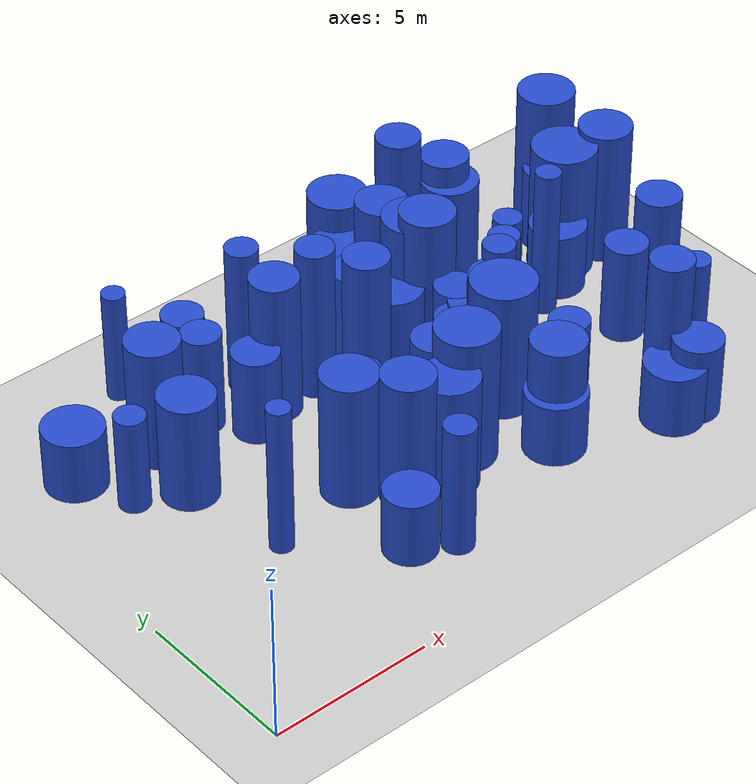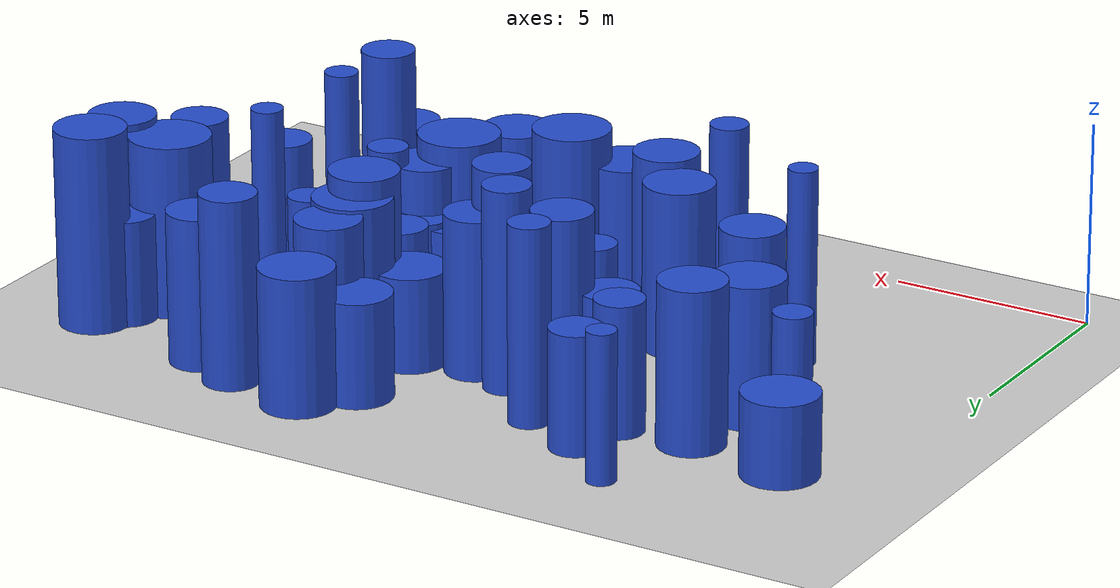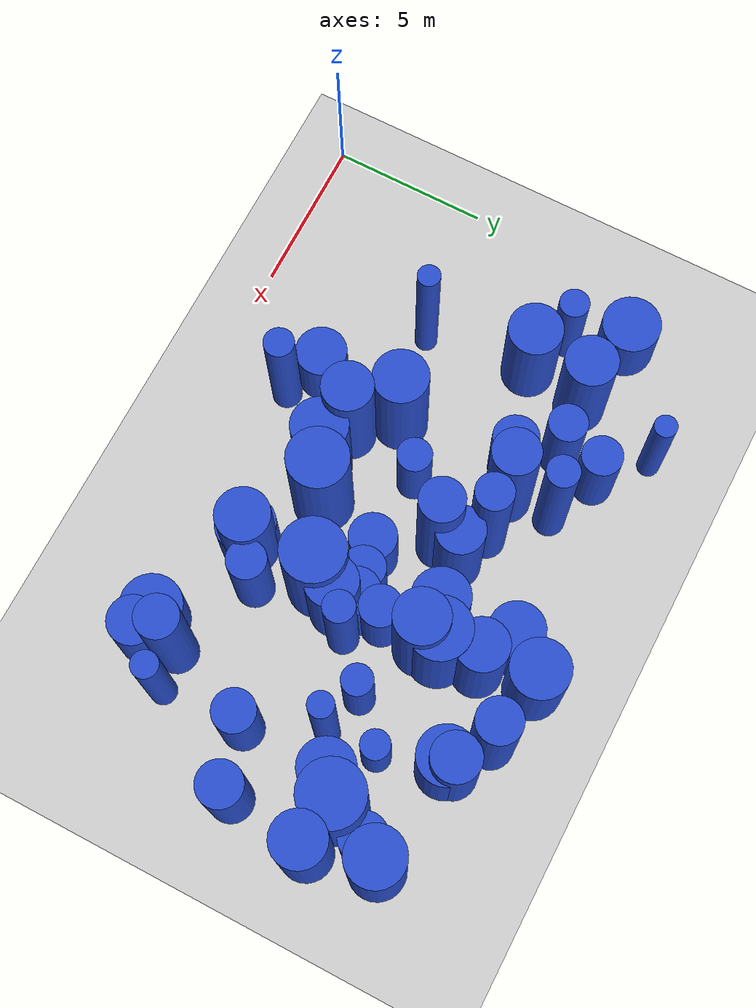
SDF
<sdf version="1.6">
 <world name="default">
  <model name="ground_plane">
   <static>1</static>
   <link name="link">
    <collision name="collision">
     <geometry><plane><normal>0 0 1</normal><size>100 100</size></plane></geometry>
     <surface><friction><ode><mu>100</mu><mu2>50</mu2></ode></friction></surface>
    </collision>
    <visual name="visual">
     <cast_shadows>0</cast_shadows>
     <geometry><plane><normal>0 0 1</normal><size>100 100</size></plane></geometry>
     <material>
      <script><uri>file://media/materials/scripts/gazebo.material</uri><name>Gazebo/Grey</name></script>
     </material>
    </visual>
   </link>
  </model>
  <model name="0">
   <static>0</static>
   <link name="link">
    <inertial>
     <mass>2</mass>
     <inertia><ixx>3.17312</ixx><ixy>0</ixy><ixz>0</ixz><iyy>3.17312</iyy><iyz>0</iyz><izz>0.73489</izz></inertia>
    </inertial>
    <collision name="collision">
     <geometry><cylinder><length>4.10293</length><radius>0.857257</radius></cylinder></geometry>
     <surface><contact><collide_without_contact>1</collide_without_contact></contact></surface>
    </collision>
    <visual name="visual">
     <geometry><cylinder><length>4.10293</length><radius>0.857257</radius></cylinder></geometry>
     <material>
      <script><uri>file://media/materials/scripts/gazebo.material</uri><name>Gazebo/Blue</name></script>
     </material>
    </visual>
    <gravity>0</gravity>
   </link>
   <pose>7.58804 6.08459 2.05146 0 -0 0</pose>
  </model>
  <model name="19">
   <static>0</static>
   <link name="link">
    <inertial>
     <mass>2</mass>
     <inertia><ixx>1.91883</ixx><ixy>0</ixy><ixz>0</ixz><iyy>1.91883</iyy><iyz>0</iyz><izz>0.790618</izz></inertia>
    </inertial>
    <collision name="collision">
     <geometry><cylinder><length>3.02343</length><radius>0.889167</radius></cylinder></geometry>
     <surface><contact><collide_without_contact>1</collide_without_contact></contact></surface>
    </collision>
    <visual name="visual">
     <geometry><cylinder><length>3.02343</length><radius>0.889167</radius></cylinder></geometry>
     <material>
      <script><uri>file://media/materials/scripts/gazebo.material</uri><name>Gazebo/Blue</name></script>
     </material>
    </visual>
    <gravity>0</gravity>
   </link>
   <pose>16.6325 12.2097 1.51172 0 -0 0</pose>
  </model>
  <model name="32">
   <static>0</static>
   <link name="link">
    <inertial>
     <mass>2</mass>
     <inertia><ixx>3.9654</ixx><ixy>0</ixy><ixz>0</ixz><iyy>3.9654</iyy><iyz>0</iyz><izz>0.125912</izz></inertia>
    </inertial>
    <collision name="collision">
     <geometry><cylinder><length>4.83887</length><radius>0.354841</radius></cylinder></geometry>
     <surface><contact><collide_without_contact>1</collide_without_contact></contact></surface>
    </collision>
    <visual name="visual">
     <geometry><cylinder><length>4.83887</length><radius>0.354841</radius></cylinder></geometry>
     <material>
      <script><uri>file://media/materials/scripts/gazebo.material</uri><name>Gazebo/Blue</name></script>
     </material>
    </visual>
    <gravity>0</gravity>
   </link>
   <pose>4.66651 5.49479 2.41944 0 -0 0</pose>
  </model>
  <model name="51">
   <static>0</static>
   <link name="link">
    <inertial>
     <mass>2</mass>
     <inertia><ixx>4.04703</ixx><ixy>0</ixy><ixz>0</ixz><iyy>4.04703</iyy><iyz>0</iyz><izz>0.151938</izz></inertia>
    </inertial>
    <collision name="collision">
     <geometry><cylinder><length>4.88122</length><radius>0.389792</radius></cylinder></geometry>
     <surface><contact><collide_without_contact>1</collide_without_contact></contact></surface>
    </collision>
    <visual name="visual">
     <geometry><cylinder><length>4.88122</length><radius>0.389792</radius></cylinder></geometry>
     <material>
      <script><uri>file://media/materials/scripts/gazebo.material</uri><name>Gazebo/Blue</name></script>
     </material>
    </visual>
    <gravity>0</gravity>
   </link>
   <pose>17.2535 8.66033 2.44061 0 -0 0</pose>
  </model>
  <model name="65">
   <static>0</static>
   <link name="link">
    <inertial>
     <mass>2</mass>
     <inertia><ixx>2.68412</ixx><ixy>0</ixy><ixz>0</ixz><iyy>2.68412</iyy><iyz>0</iyz><izz>0.778534</izz></inertia>
    </inertial>
    <collision name="collision">
     <geometry><cylinder><length>3.71067</length><radius>0.882346</radius></cylinder></geometry>
     <surface><contact><collide_without_contact>1</collide_without_contact></contact></surface>
    </collision>
    <visual name="visual">
     <geometry><cylinder><length>3.71067</length><radius>0.882346</radius></cylinder></geometry>
     <material>
      <script><uri>file://media/materials/scripts/gazebo.material</uri><name>Gazebo/Blue</name></script>
     </material>
    </visual>
    <gravity>0</gravity>
   </link>
   <pose>9.89569 4.60056 1.85534 0 -0 0</pose>
  </model>
  <model name="68">
   <static>0</static>
   <link name="link">
    <inertial>
     <mass>2</mass>
     <inertia><ixx>1.89087</ixx><ixy>0</ixy><ixz>0</ixz><iyy>1.89087</iyy><iyz>0</iyz><izz>0.429731</izz></inertia>
    </inertial>
    <collision name="collision">
     <geometry><cylinder><length>3.17112</length><radius>0.655539</radius></cylinder></geometry>
     <surface><contact><collide_without_contact>1</collide_without_contact></contact></surface>
    </collision>
    <visual name="visual">
     <geometry><cylinder><length>3.17112</length><radius>0.655539</radius></cylinder></geometry>
     <material>
      <script><uri>file://media/materials/scripts/gazebo.material</uri><name>Gazebo/Blue</name></script>
     </material>
    </visual>
    <gravity>0</gravity>
   </link>
   <pose>18.2845 6.37617 1.58556 0 -0 0</pose>
  </model>
  <model name="70">
   <static>0</static>
   <link name="link">
    <inertial>
     <mass>2</mass>
     <inertia><ixx>3.78775</ixx><ixy>0</ixy><ixz>0</ixz><iyy>3.78775</iyy><iyz>0</iyz><izz>0.890965</izz></inertia>
    </inertial>
    <collision name="collision">
     <geometry><cylinder><length>4.47813</length><radius>0.943909</radius></cylinder></geometry>
     <surface><contact><collide_without_contact>1</collide_without_contact></contact></surface>
    </collision>
    <visual name="visual">
     <geometry><cylinder><length>4.47813</length><radius>0.943909</radius></cylinder></geometry>
     <material>
      <script><uri>file://media/materials/scripts/gazebo.material</uri><name>Gazebo/Blue</name></script>
     </material>
    </visual>
    <gravity>0</gravity>
   </link>
   <pose>11.0126 5.18411 2.23906 0 -0 0</pose>
  </model>
  <model name="96">
   <static>0</static>
   <link name="link">
    <inertial>
     <mass>2</mass>
     <inertia><ixx>3.12972</ixx><ixy>0</ixy><ixz>0</ixz><iyy>3.12972</iyy><iyz>0</iyz><izz>0.918622</izz></inertia>
    </inertial>
    <collision name="collision">
     <geometry><cylinder><length>4.00281</length><radius>0.958448</radius></cylinder></geometry>
     <surface><contact><collide_without_contact>1</collide_without_contact></contact></surface>
    </collision>
    <visual name="visual">
     <geometry><cylinder><length>4.00281</length><radius>0.958448</radius></cylinder></geometry>
     <material>
      <script><uri>file://media/materials/scripts/gazebo.material</uri><name>Gazebo/Blue</name></script>
     </material>
    </visual>
    <gravity>0</gravity>
   </link>
   <pose>13.7137 10.487 2.0014 0 -0 0</pose>
  </model>
  <model name="98">
   <static>0</static>
   <link name="link">
    <inertial>
     <mass>2</mass>
     <inertia><ixx>3.96173</ixx><ixy>0</ixy><ixz>0</ixz><iyy>3.96173</iyy><iyz>0</iyz><izz>0.434607</izz></inertia>
    </inertial>
    <collision name="collision">
     <geometry><cylinder><length>4.73989</length><radius>0.659247</radius></cylinder></geometry>
     <surface><contact><collide_without_contact>1</collide_without_contact></contact></surface>
    </collision>
    <visual name="visual">
     <geometry><cylinder><length>4.73989</length><radius>0.659247</radius></cylinder></geometry>
     <material>
      <script><uri>file://media/materials/scripts/gazebo.material</uri><name>Gazebo/Blue</name></script>
     </material>
    </visual>
    <gravity>0</gravity>
   </link>
   <pose>17.1698 3.49956 2.36994 0 -0 0</pose>
  </model>
  <model name="100">
   <static>0</static>
   <link name="link">
    <inertial>
     <mass>2</mass>
     <inertia><ixx>3.05003</ixx><ixy>0</ixy><ixz>0</ixz><iyy>3.05003</iyy><iyz>0</iyz><izz>0.222899</izz></inertia>
    </inertial>
    <collision name="collision">
     <geometry><cylinder><length>4.19899</length><radius>0.472122</radius></cylinder></geometry>
     <surface><contact><collide_without_contact>1</collide_without_contact></contact></surface>
    </collision>
    <visual name="visual">
     <geometry><cylinder><length>4.19899</length><radius>0.472122</radius></cylinder></geometry>
     <material>
      <script><uri>file://media/materials/scripts/gazebo.material</uri><name>Gazebo/Blue</name></script>
     </material>
    </visual>
    <gravity>0</gravity>
   </link>
   <pose>8.32558 2.43405 2.09949 0 -0 0</pose>
  </model>
  <model name="102">
   <static>0</static>
   <link name="link">
    <inertial>
     <mass>2</mass>
     <inertia><ixx>3.49696</ixx><ixy>0</ixy><ixz>0</ixz><iyy>3.49696</iyy><iyz>0</iyz><izz>0.981406</izz></inertia>
    </inertial>
    <collision name="collision">
     <geometry><cylinder><length>4.24706</length><radius>0.99066</radius></cylinder></geometry>
     <surface><contact><collide_without_contact>1</collide_without_contact></contact></surface>
    </collision>
    <visual name="visual">
     <geometry><cylinder><length>4.24706</length><radius>0.99066</radius></cylinder></geometry>
     <material>
      <script><uri>file://media/materials/scripts/gazebo.material</uri><name>Gazebo/Blue</name></script>
     </material>
    </visual>
    <gravity>0</gravity>
   </link>
   <pose>13.4145 6.31929 2.12353 0 -0 0</pose>
  </model>
  <model name="128">
   <static>0</static>
   <link name="link">
    <inertial>
     <mass>2</mass>
     <inertia><ixx>2.24245</ixx><ixy>0</ixy><ixz>0</ixz><iyy>2.24245</iyy><iyz>0</iyz><izz>0.12581</izz></inertia>
    </inertial>
    <collision name="collision">
     <geometry><cylinder><length>3.61625</length><radius>0.354698</radius></cylinder></geometry>
     <surface><contact><collide_without_contact>1</collide_without_contact></contact></surface>
    </collision>
    <visual name="visual">
     <geometry><cylinder><length>3.61625</length><radius>0.354698</radius></cylinder></geometry>
     <material>
      <script><uri>file://media/materials/scripts/gazebo.material</uri><name>Gazebo/Blue</name></script>
     </material>
    </visual>
    <gravity>0</gravity>
   </link>
   <pose>5.24774 13.5813 1.80813 0 -0 0</pose>
  </model>
  <model name="134">
   <static>0</static>
   <link name="link">
    <inertial>
     <mass>2</mass>
     <inertia>
      <ixx>2.76564</ixx>
      <ixy>0</ixy>
      <ixz>0</ixz>
      <iyy>2.76564</iyy>
      <iyz>0</iyz>
      <izz>0.0823417</izz>
     </inertia>
    </inertial>
    <collision name="collision">
     <geometry><cylinder><length>4.04312</length><radius>0.286952</radius></cylinder></geometry>
     <surface><contact><collide_without_contact>1</collide_without_contact></contact></surface>
    </collision>
    <visual name="visual">
     <geometry><cylinder><length>4.04312</length><radius>0.286952</radius></cylinder></geometry>
     <material>
      <script><uri>file://media/materials/scripts/gazebo.material</uri><name>Gazebo/Blue</name></script>
     </material>
    </visual>
    <gravity>0</gravity>
   </link>
   <pose>8.13673 11.5728 2.02156 0 -0 0</pose>
  </model>
  <model name="142">
   <static>0</static>
   <link name="link">
    <inertial>
     <mass>2</mass>
     <inertia><ixx>1.31696</ixx><ixy>0</ixy><ixz>0</ixz><iyy>1.31696</iyy><iyz>0</iyz><izz>0.811578</izz></inertia>
    </inertial>
    <collision name="collision">
     <geometry><cylinder><length>2.33816</length><radius>0.900876</radius></cylinder></geometry>
     <surface><contact><collide_without_contact>1</collide_without_contact></contact></surface>
    </collision>
    <visual name="visual">
     <geometry><cylinder><length>2.33816</length><radius>0.900876</radius></cylinder></geometry>
     <material>
      <script><uri>file://media/materials/scripts/gazebo.material</uri><name>Gazebo/Blue</name></script>
     </material>
    </visual>
    <gravity>0</gravity>
   </link>
   <pose>12.5077 9.96442 1.16908 0 -0 0</pose>
  </model>
  <model name="150">
   <static>0</static>
   <link name="link">
    <inertial>
     <mass>2</mass>
     <inertia><ixx>1.70241</ixx><ixy>0</ixy><ixz>0</ixz><iyy>1.70241</iyy><iyz>0</iyz><izz>0.231826</izz></inertia>
    </inertial>
    <collision name="collision">
     <geometry><cylinder><length>3.08528</length><radius>0.481483</radius></cylinder></geometry>
     <surface><contact><collide_without_contact>1</collide_without_contact></contact></surface>
    </collision>
    <visual name="visual">
     <geometry><cylinder><length>3.08528</length><radius>0.481483</radius></cylinder></geometry>
     <material>
      <script><uri>file://media/materials/scripts/gazebo.material</uri><name>Gazebo/Blue</name></script>
     </material>
    </visual>
    <gravity>0</gravity>
   </link>
   <pose>15.9163 9.0167 1.54264 0 -0 0</pose>
  </model>
  <model name="173">
   <static>0</static>
   <link name="link">
    <inertial>
     <mass>2</mass>
     <inertia><ixx>3.54667</ixx><ixy>0</ixy><ixz>0</ixz><iyy>3.54667</iyy><iyz>0</iyz><izz>0.99816</izz></inertia>
    </inertial>
    <collision name="collision">
     <geometry><cylinder><length>4.27616</length><radius>0.99908</radius></cylinder></geometry>
     <surface><contact><collide_without_contact>1</collide_without_contact></contact></surface>
    </collision>
    <visual name="visual">
     <geometry><cylinder><length>4.27616</length><radius>0.99908</radius></cylinder></geometry>
     <material>
      <script><uri>file://media/materials/scripts/gazebo.material</uri><name>Gazebo/Blue</name></script>
     </material>
    </visual>
    <gravity>0</gravity>
   </link>
   <pose>19.1438 9.96415 2.13808 0 -0 0</pose>
  </model>
  <model name="176">
   <static>0</static>
   <link name="link">
    <inertial>
     <mass>2</mass>
     <inertia><ixx>2.66861</ixx><ixy>0</ixy><ixz>0</ixz><iyy>2.66861</iyy><iyz>0</iyz><izz>0.656205</izz></inertia>
    </inertial>
    <collision name="collision">
     <geometry><cylinder><length>3.7474</length><radius>0.810065</radius></cylinder></geometry>
     <surface><contact><collide_without_contact>1</collide_without_contact></contact></surface>
    </collision>
    <visual name="visual">
     <geometry><cylinder><length>3.7474</length><radius>0.810065</radius></cylinder></geometry>
     <material>
      <script><uri>file://media/materials/scripts/gazebo.material</uri><name>Gazebo/Blue</name></script>
     </material>
    </visual>
    <gravity>0</gravity>
   </link>
   <pose>13.8585 7.12105 1.8737 0 -0 0</pose>
  </model>
  <model name="177">
   <static>0</static>
   <link name="link">
    <inertial>
     <mass>2</mass>
     <inertia><ixx>2.61872</ixx><ixy>0</ixy><ixz>0</ixz><iyy>2.61872</iyy><iyz>0</iyz><izz>0.558174</izz></inertia>
    </inertial>
    <collision name="collision">
     <geometry><cylinder><length>3.74671</length><radius>0.74711</radius></cylinder></geometry>
     <surface><contact><collide_without_contact>1</collide_without_contact></contact></surface>
    </collision>
    <visual name="visual">
     <geometry><cylinder><length>3.74671</length><radius>0.74711</radius></cylinder></geometry>
     <material>
      <script><uri>file://media/materials/scripts/gazebo.material</uri><name>Gazebo/Blue</name></script>
     </material>
    </visual>
    <gravity>0</gravity>
   </link>
   <pose>16.657 12.4871 1.87335 0 -0 0</pose>
  </model>
  <model name="178">
   <static>0</static>
   <link name="link">
    <inertial>
     <mass>2</mass>
     <inertia><ixx>4.35734</ixx><ixy>0</ixy><ixz>0</ixz><iyy>4.35734</iyy><iyz>0</iyz><izz>0.762435</izz></inertia>
    </inertial>
    <collision name="collision">
     <geometry><cylinder><length>4.88434</length><radius>0.873175</radius></cylinder></geometry>
     <surface><contact><collide_without_contact>1</collide_without_contact></contact></surface>
    </collision>
    <visual name="visual">
     <geometry><cylinder><length>4.88434</length><radius>0.873175</radius></cylinder></geometry>
     <material>
      <script><uri>file://media/materials/scripts/gazebo.material</uri><name>Gazebo/Blue</name></script>
     </material>
    </visual>
    <gravity>0</gravity>
   </link>
   <pose>20.1013 11.808 2.44217 0 -0 0</pose>
  </model>
  <model name="179">
   <static>0</static>
   <link name="link">
    <inertial>
     <mass>2</mass>
     <inertia><ixx>1.08249</ixx><ixy>0</ixy><ixz>0</ixz><iyy>1.08249</iyy><iyz>0</iyz><izz>0.205577</izz></inertia>
    </inertial>
    <collision name="collision">
     <geometry><cylinder><length>2.4245</length><radius>0.453406</radius></cylinder></geometry>
     <surface><contact><collide_without_contact>1</collide_without_contact></contact></surface>
    </collision>
    <visual name="visual">
     <geometry><cylinder><length>2.4245</length><radius>0.453406</radius></cylinder></geometry>
     <material>
      <script><uri>file://media/materials/scripts/gazebo.material</uri><name>Gazebo/Blue</name></script>
     </material>
    </visual>
    <gravity>0</gravity>
   </link>
   <pose>17.2031 10.256 1.21225 0 -0 0</pose>
  </model>
  <model name="216">
   <static>0</static>
   <link name="link">
    <inertial>
     <mass>2</mass>
     <inertia><ixx>1.55664</ixx><ixy>0</ixy><ixz>0</ixz><iyy>1.55664</iyy><iyz>0</iyz><izz>0.512471</izz></inertia>
    </inertial>
    <collision name="collision">
     <geometry><cylinder><length>2.79329</length><radius>0.715871</radius></cylinder></geometry>
     <surface><contact><collide_without_contact>1</collide_without_contact></contact></surface>
    </collision>
    <visual name="visual">
     <geometry><cylinder><length>2.79329</length><radius>0.715871</radius></cylinder></geometry>
     <material>
      <script><uri>file://media/materials/scripts/gazebo.material</uri><name>Gazebo/Blue</name></script>
     </material>
    </visual>
    <gravity>0</gravity>
   </link>
   <pose>7.27759 9.78099 1.39664 0 -0 0</pose>
  </model>
  <model name="228">
   <static>0</static>
   <link name="link">
    <inertial>
     <mass>2</mass>
     <inertia><ixx>2.36943</ixx><ixy>0</ixy><ixz>0</ixz><iyy>2.36943</iyy><iyz>0</iyz><izz>0.485258</izz></inertia>
    </inertial>
    <collision name="collision">
     <geometry><cylinder><length>3.57222</length><radius>0.696605</radius></cylinder></geometry>
     <surface><contact><collide_without_contact>1</collide_without_contact></contact></surface>
    </collision>
    <visual name="visual">
     <geometry><cylinder><length>3.57222</length><radius>0.696605</radius></cylinder></geometry>
     <material>
      <script><uri>file://media/materials/scripts/gazebo.material</uri><name>Gazebo/Blue</name></script>
     </material>
    </visual>
    <gravity>0</gravity>
   </link>
   <pose>20.259 7.07931 1.78611 0 -0 0</pose>
  </model>
  <model name="230">
   <static>0</static>
   <link name="link">
    <inertial>
     <mass>2</mass>
     <inertia><ixx>2.84759</ixx><ixy>0</ixy><ixz>0</ixz><iyy>2.84759</iyy><iyz>0</iyz><izz>0.555509</izz></inertia>
    </inertial>
    <collision name="collision">
     <geometry><cylinder><length>3.9267</length><radius>0.745325</radius></cylinder></geometry>
     <surface><contact><collide_without_contact>1</collide_without_contact></contact></surface>
    </collision>
    <visual name="visual">
     <geometry><cylinder><length>3.9267</length><radius>0.745325</radius></cylinder></geometry>
     <material>
      <script><uri>file://media/materials/scripts/gazebo.material</uri><name>Gazebo/Blue</name></script>
     </material>
    </visual>
    <gravity>0</gravity>
   </link>
   <pose>10.8914 9.71009 1.96335 0 -0 0</pose>
  </model>
  <model name="231">
   <static>0</static>
   <link name="link">
    <inertial>
     <mass>2</mass>
     <inertia><ixx>1.37799</ixx><ixy>0</ixy><ixz>0</ixz><iyy>1.37799</iyy><iyz>0</iyz><izz>0.576397</izz></inertia>
    </inertial>
    <collision name="collision">
     <geometry><cylinder><length>2.5571</length><radius>0.759208</radius></cylinder></geometry>
     <surface><contact><collide_without_contact>1</collide_without_contact></contact></surface>
    </collision>
    <visual name="visual">
     <geometry><cylinder><length>2.5571</length><radius>0.759208</radius></cylinder></geometry>
     <material>
      <script><uri>file://media/materials/scripts/gazebo.material</uri><name>Gazebo/Blue</name></script>
     </material>
    </visual>
    <gravity>0</gravity>
   </link>
   <pose>17.278 2.4037 1.27855 0 -0 0</pose>
  </model>
  <model name="237">
   <static>0</static>
   <link name="link">
    <inertial>
     <mass>2</mass>
     <inertia><ixx>1.73145</ixx><ixy>0</ixy><ixz>0</ixz><iyy>1.73145</iyy><iyz>0</iyz><izz>0.219115</izz></inertia>
    </inertial>
    <collision name="collision">
     <geometry><cylinder><length>3.11951</length><radius>0.468098</radius></cylinder></geometry>
     <surface><contact><collide_without_contact>1</collide_without_contact></contact></surface>
    </collision>
    <visual name="visual">
     <geometry><cylinder><length>3.11951</length><radius>0.468098</radius></cylinder></geometry>
     <material>
      <script><uri>file://media/materials/scripts/gazebo.material</uri><name>Gazebo/Blue</name></script>
     </material>
    </visual>
    <gravity>0</gravity>
   </link>
   <pose>2.70861 9.48537 1.55976 0 -0 0</pose>
  </model>
  <model name="238">
   <static>0</static>
   <link name="link">
    <inertial>
     <mass>2</mass>
     <inertia><ixx>4.05026</ixx><ixy>0</ixy><ixz>0</ixz><iyy>4.05026</iyy><iyz>0</iyz><izz>0.247757</izz></inertia>
    </inertial>
    <collision name="collision">
     <geometry><cylinder><length>4.85369</length><radius>0.497752</radius></cylinder></geometry>
     <surface><contact><collide_without_contact>1</collide_without_contact></contact></surface>
    </collision>
    <visual name="visual">
     <geometry><cylinder><length>4.85369</length><radius>0.497752</radius></cylinder></geometry>
     <material>
      <script><uri>file://media/materials/scripts/gazebo.material</uri><name>Gazebo/Blue</name></script>
     </material>
    </visual>
    <gravity>0</gravity>
   </link>
   <pose>8.29883 11.6 2.42685 0 -0 0</pose>
  </model>
  <model name="256">
   <static>0</static>
   <link name="link">
    <inertial>
     <mass>2</mass>
     <inertia><ixx>3.83415</ixx><ixy>0</ixy><ixz>0</ixz><iyy>3.83415</iyy><iyz>0</iyz><izz>0.471986</izz></inertia>
    </inertial>
    <collision name="collision">
     <geometry><cylinder><length>4.64639</length><radius>0.687012</radius></cylinder></geometry>
     <surface><contact><collide_without_contact>1</collide_without_contact></contact></surface>
    </collision>
    <visual name="visual">
     <geometry><cylinder><length>4.64639</length><radius>0.687012</radius></cylinder></geometry>
     <material>
      <script><uri>file://media/materials/scripts/gazebo.material</uri><name>Gazebo/Blue</name></script>
     </material>
    </visual>
    <gravity>0</gravity>
   </link>
   <pose>15.3863 13.1119 2.3232 0 -0 0</pose>
  </model>
  <model name="257">
   <static>0</static>
   <link name="link">
    <inertial>
     <mass>2</mass>
     <inertia><ixx>2.32191</ixx><ixy>0</ixy><ixz>0</ixz><iyy>2.32191</iyy><iyz>0</iyz><izz>0.816403</izz></inertia>
    </inertial>
    <collision name="collision">
     <geometry><cylinder><length>3.38854</length><radius>0.90355</radius></cylinder></geometry>
     <surface><contact><collide_without_contact>1</collide_without_contact></contact></surface>
    </collision>
    <visual name="visual">
     <geometry><cylinder><length>3.38854</length><radius>0.90355</radius></cylinder></geometry>
     <material>
      <script><uri>file://media/materials/scripts/gazebo.material</uri><name>Gazebo/Blue</name></script>
     </material>
    </visual>
    <gravity>0</gravity>
   </link>
   <pose>13.3203 13.4602 1.69427 0 -0 0</pose>
  </model>
  <model name="260">
   <static>0</static>
   <link name="link">
    <inertial>
     <mass>2</mass>
     <inertia><ixx>2.08267</ixx><ixy>0</ixy><ixz>0</ixz><iyy>2.08267</iyy><iyz>0</iyz><izz>0.369878</izz></inertia>
    </inertial>
    <collision name="collision">
     <geometry><cylinder><length>3.37437</length><radius>0.608176</radius></cylinder></geometry>
     <surface><contact><collide_without_contact>1</collide_without_contact></contact></surface>
    </collision>
    <visual name="visual">
     <geometry><cylinder><length>3.37437</length><radius>0.608176</radius></cylinder></geometry>
     <material>
      <script><uri>file://media/materials/scripts/gazebo.material</uri><name>Gazebo/Blue</name></script>
     </material>
    </visual>
    <gravity>0</gravity>
   </link>
   <pose>14.3535 4.61027 1.68718 0 -0 0</pose>
  </model>
  <model name="262">
   <static>0</static>
   <link name="link">
    <inertial>
     <mass>2</mass>
     <inertia><ixx>4.27903</ixx><ixy>0</ixy><ixz>0</ixz><iyy>4.27903</iyy><iyz>0</iyz><izz>0.477911</izz></inertia>
    </inertial>
    <collision name="collision">
     <geometry><cylinder><length>4.92346</length><radius>0.691311</radius></cylinder></geometry>
     <surface><contact><collide_without_contact>1</collide_without_contact></contact></surface>
    </collision>
    <visual name="visual">
     <geometry><cylinder><length>4.92346</length><radius>0.691311</radius></cylinder></geometry>
     <material>
      <script><uri>file://media/materials/scripts/gazebo.material</uri><name>Gazebo/Blue</name></script>
     </material>
    </visual>
    <gravity>0</gravity>
   </link>
   <pose>10.629 8.95673 2.46173 0 -0 0</pose>
  </model>
  <model name="290">
   <static>0</static>
   <link name="link">
    <inertial>
     <mass>2</mass>
     <inertia><ixx>2.55981</ixx><ixy>0</ixy><ixz>0</ixz><iyy>2.55981</iyy><iyz>0</iyz><izz>0.696159</izz></inertia>
    </inertial>
    <collision name="collision">
     <geometry><cylinder><length>3.64285</length><radius>0.834361</radius></cylinder></geometry>
     <surface><contact><collide_without_contact>1</collide_without_contact></contact></surface>
    </collision>
    <visual name="visual">
     <geometry><cylinder><length>3.64285</length><radius>0.834361</radius></cylinder></geometry>
     <material>
      <script><uri>file://media/materials/scripts/gazebo.material</uri><name>Gazebo/Blue</name></script>
     </material>
    </visual>
    <gravity>0</gravity>
   </link>
   <pose>13.2876 3.91817 1.82143 0 -0 0</pose>
  </model>
  <model name="293">
   <static>0</static>
   <link name="link">
    <inertial>
     <mass>2</mass>
     <inertia><ixx>1.41927</ixx><ixy>0</ixy><ixz>0</ixz><iyy>1.41927</iyy><iyz>0</iyz><izz>0.271073</izz></inertia>
    </inertial>
    <collision name="collision">
     <geometry><cylinder><length>2.77531</length><radius>0.520647</radius></cylinder></geometry>
     <surface><contact><collide_without_contact>1</collide_without_contact></contact></surface>
    </collision>
    <visual name="visual">
     <geometry><cylinder><length>2.77531</length><radius>0.520647</radius></cylinder></geometry>
     <material>
      <script><uri>file://media/materials/scripts/gazebo.material</uri><name>Gazebo/Blue</name></script>
     </material>
    </visual>
    <gravity>0</gravity>
   </link>
   <pose>13.4617 6.71615 1.38766 0 -0 0</pose>
  </model>
  <model name="326">
   <static>0</static>
   <link name="link">
    <inertial>
     <mass>2</mass>
     <inertia><ixx>3.63062</ixx><ixy>0</ixy><ixz>0</ixz><iyy>3.63062</iyy><iyz>0</iyz><izz>0.679566</izz></inertia>
    </inertial>
    <collision name="collision">
     <geometry><cylinder><length>4.44354</length><radius>0.824358</radius></cylinder></geometry>
     <surface><contact><collide_without_contact>1</collide_without_contact></contact></surface>
    </collision>
    <visual name="visual">
     <geometry><cylinder><length>4.44354</length><radius>0.824358</radius></cylinder></geometry>
     <material>
      <script><uri>file://media/materials/scripts/gazebo.material</uri><name>Gazebo/Blue</name></script>
     </material>
    </visual>
    <gravity>0</gravity>
   </link>
   <pose>20.6175 9.76985 2.22177 0 -0 0</pose>
  </model>
  <model name="334">
   <static>0</static>
   <link name="link">
    <inertial>
     <mass>2</mass>
     <inertia><ixx>2.88136</ixx><ixy>0</ixy><ixz>0</ixz><iyy>2.88136</iyy><iyz>0</iyz><izz>0.64246</izz></inertia>
    </inertial>
    <collision name="collision">
     <geometry><cylinder><length>3.91928</length><radius>0.801536</radius></cylinder></geometry>
     <surface><contact><collide_without_contact>1</collide_without_contact></contact></surface>
    </collision>
    <visual name="visual">
     <geometry><cylinder><length>3.91928</length><radius>0.801536</radius></cylinder></geometry>
     <material>
      <script><uri>file://media/materials/scripts/gazebo.material</uri><name>Gazebo/Blue</name></script>
     </material>
    </visual>
    <gravity>0</gravity>
   </link>
   <pose>13.5713 11.7381 1.95964 0 -0 0</pose>
  </model>
  <model name="350">
   <static>0</static>
   <link name="link">
    <inertial>
     <mass>2</mass>
     <inertia><ixx>2.36875</ixx><ixy>0</ixy><ixz>0</ixz><iyy>2.36875</iyy><iyz>0</iyz><izz>0.717908</izz></inertia>
    </inertial>
    <collision name="collision">
     <geometry><cylinder><length>3.47257</length><radius>0.847294</radius></cylinder></geometry>
     <surface><contact><collide_without_contact>1</collide_without_contact></contact></surface>
    </collision>
    <visual name="visual">
     <geometry><cylinder><length>3.47257</length><radius>0.847294</radius></cylinder></geometry>
     <material>
      <script><uri>file://media/materials/scripts/gazebo.material</uri><name>Gazebo/Blue</name></script>
     </material>
    </visual>
    <gravity>0</gravity>
   </link>
   <pose>4.15569 8.85593 1.73629 0 -0 0</pose>
  </model>
  <model name="351">
   <static>0</static>
   <link name="link">
    <inertial>
     <mass>2</mass>
     <inertia><ixx>3.67942</ixx><ixy>0</ixy><ixz>0</ixz><iyy>3.67942</iyy><iyz>0</iyz><izz>0.710113</izz></inertia>
    </inertial>
    <collision name="collision">
     <geometry><cylinder><length>4.46612</length><radius>0.842682</radius></cylinder></geometry>
     <surface><contact><collide_without_contact>1</collide_without_contact></contact></surface>
    </collision>
    <visual name="visual">
     <geometry><cylinder><length>4.46612</length><radius>0.842682</radius></cylinder></geometry>
     <material>
      <script><uri>file://media/materials/scripts/gazebo.material</uri><name>Gazebo/Blue</name></script>
     </material>
    </visual>
    <gravity>0</gravity>
   </link>
   <pose>13.747 9.92959 2.23306 0 -0 0</pose>
  </model>
  <model name="360">
   <static>0</static>
   <link name="link">
    <inertial>
     <mass>2</mass>
     <inertia><ixx>2.75827</ixx><ixy>0</ixy><ixz>0</ixz><iyy>2.75827</iyy><iyz>0</iyz><izz>0.173999</izz></inertia>
    </inertial>
    <collision name="collision">
     <geometry><cylinder><length>4.00345</length><radius>0.417132</radius></cylinder></geometry>
     <surface><contact><collide_without_contact>1</collide_without_contact></contact></surface>
    </collision>
    <visual name="visual">
     <geometry><cylinder><length>4.00345</length><radius>0.417132</radius></cylinder></geometry>
     <material>
      <script><uri>file://media/materials/scripts/gazebo.material</uri><name>Gazebo/Blue</name></script>
     </material>
    </visual>
    <gravity>0</gravity>
   </link>
   <pose>18.3902 3.71145 2.00173 0 -0 0</pose>
  </model>
  <model name="363">
   <static>0</static>
   <link name="link">
    <inertial>
     <mass>2</mass>
     <inertia><ixx>3.34913</ixx><ixy>0</ixy><ixz>0</ixz><iyy>3.34913</iyy><iyz>0</iyz><izz>0.634081</izz></inertia>
    </inertial>
    <collision name="collision">
     <geometry><cylinder><length>4.26527</length><radius>0.796292</radius></cylinder></geometry>
     <surface><contact><collide_without_contact>1</collide_without_contact></contact></surface>
    </collision>
    <visual name="visual">
     <geometry><cylinder><length>4.26527</length><radius>0.796292</radius></cylinder></geometry>
     <material>
      <script><uri>file://media/materials/scripts/gazebo.material</uri><name>Gazebo/Blue</name></script>
     </material>
    </visual>
    <gravity>0</gravity>
   </link>
   <pose>8.6309 4.87337 2.13264 0 -0 0</pose>
  </model>
  <model name="378">
   <static>0</static>
   <link name="link">
    <inertial>
     <mass>2</mass>
     <inertia><ixx>1.04169</ixx><ixy>0</ixy><ixz>0</ixz><iyy>1.04169</iyy><iyz>0</iyz><izz>0.640047</izz></inertia>
    </inertial>
    <collision name="collision">
     <geometry><cylinder><length>2.08086</length><radius>0.800029</radius></cylinder></geometry>
     <surface><contact><collide_without_contact>1</collide_without_contact></contact></surface>
    </collision>
    <visual name="visual">
     <geometry><cylinder><length>2.08086</length><radius>0.800029</radius></cylinder></geometry>
     <material>
      <script><uri>file://media/materials/scripts/gazebo.material</uri><name>Gazebo/Blue</name></script>
     </material>
    </visual>
    <gravity>0</gravity>
   </link>
   <pose>7.25961 3.17094 1.04043 0 -0 0</pose>
  </model>
  <model name="379">
   <static>0</static>
   <link name="link">
    <inertial>
     <mass>2</mass>
     <inertia><ixx>1.45944</ixx><ixy>0</ixy><ixz>0</ixz><iyy>1.45944</iyy><iyz>0</iyz><izz>0.723548</izz></inertia>
    </inertial>
    <collision name="collision">
     <geometry><cylinder><length>2.56632</length><radius>0.850616</radius></cylinder></geometry>
     <surface><contact><collide_without_contact>1</collide_without_contact></contact></surface>
    </collision>
    <visual name="visual">
     <geometry><cylinder><length>2.56632</length><radius>0.850616</radius></cylinder></geometry>
     <material>
      <script><uri>file://media/materials/scripts/gazebo.material</uri><name>Gazebo/Blue</name></script>
     </material>
    </visual>
    <gravity>0</gravity>
   </link>
   <pose>12.4265 12.3591 1.28316 0 -0 0</pose>
  </model>
  <model name="387">
   <static>0</static>
   <link name="link">
    <inertial>
     <mass>2</mass>
     <inertia><ixx>1.37068</ixx><ixy>0</ixy><ixz>0</ixz><iyy>1.37068</iyy><iyz>0</iyz><izz>0.291885</izz></inertia>
    </inertial>
    <collision name="collision">
     <geometry><cylinder><length>2.7108</length><radius>0.540264</radius></cylinder></geometry>
     <surface><contact><collide_without_contact>1</collide_without_contact></contact></surface>
    </collision>
    <visual name="visual">
     <geometry><cylinder><length>2.7108</length><radius>0.540264</radius></cylinder></geometry>
     <material>
      <script><uri>file://media/materials/scripts/gazebo.material</uri><name>Gazebo/Blue</name></script>
     </material>
    </visual>
    <gravity>0</gravity>
   </link>
   <pose>9.1169 7.34232 1.3554 0 -0 0</pose>
  </model>
  <model name="394">
   <static>0</static>
   <link name="link">
    <inertial>
     <mass>2</mass>
     <inertia><ixx>1.10922</ixx><ixy>0</ixy><ixz>0</ixz><iyy>1.10922</iyy><iyz>0</iyz><izz>0.864611</izz></inertia>
    </inertial>
    <collision name="collision">
     <geometry><cylinder><length>2.01532</length><radius>0.929844</radius></cylinder></geometry>
     <surface><contact><collide_without_contact>1</collide_without_contact></contact></surface>
    </collision>
    <visual name="visual">
     <geometry><cylinder><length>2.01532</length><radius>0.929844</radius></cylinder></geometry>
     <material>
      <script><uri>file://media/materials/scripts/gazebo.material</uri><name>Gazebo/Blue</name></script>
     </material>
    </visual>
    <gravity>0</gravity>
   </link>
   <pose>13.1339 3.76967 1.00766 0 -0 0</pose>
  </model>
  <model name="402">
   <static>0</static>
   <link name="link">
    <inertial>
     <mass>2</mass>
     <inertia><ixx>1.18263</ixx><ixy>0</ixy><ixz>0</ixz><iyy>1.18263</iyy><iyz>0</iyz><izz>0.77149</izz></inertia>
    </inertial>
    <collision name="collision">
     <geometry><cylinder><length>2.18662</length><radius>0.878345</radius></cylinder></geometry>
     <surface><contact><collide_without_contact>1</collide_without_contact></contact></surface>
    </collision>
    <visual name="visual">
     <geometry><cylinder><length>2.18662</length><radius>0.878345</radius></cylinder></geometry>
     <material>
      <script><uri>file://media/materials/scripts/gazebo.material</uri><name>Gazebo/Blue</name></script>
     </material>
    </visual>
    <gravity>0</gravity>
   </link>
   <pose>18.3615 9.30445 1.09331 0 -0 0</pose>
  </model>
  <model name="406">
   <static>0</static>
   <link name="link">
    <inertial>
     <mass>2</mass>
     <inertia><ixx>1.3793</ixx><ixy>0</ixy><ixz>0</ixz><iyy>1.3793</iyy><iyz>0</iyz><izz>0.423056</izz></inertia>
    </inertial>
    <collision name="collision">
     <geometry><cylinder><length>2.64701</length><radius>0.650427</radius></cylinder></geometry>
     <surface><contact><collide_without_contact>1</collide_without_contact></contact></surface>
    </collision>
    <visual name="visual">
     <geometry><cylinder><length>2.64701</length><radius>0.650427</radius></cylinder></geometry>
     <material>
      <script><uri>file://media/materials/scripts/gazebo.material</uri><name>Gazebo/Blue</name></script>
     </material>
    </visual>
    <gravity>0</gravity>
   </link>
   <pose>13.6374 8.55706 1.3235 0 -0 0</pose>
  </model>
  <model name="419">
   <static>0</static>
   <link name="link">
    <inertial>
     <mass>2</mass>
     <inertia><ixx>1.4367</ixx><ixy>0</ixy><ixz>0</ixz><iyy>1.4367</iyy><iyz>0</iyz><izz>0.552944</izz></inertia>
    </inertial>
    <collision name="collision">
     <geometry><cylinder><length>2.63844</length><radius>0.743602</radius></cylinder></geometry>
     <surface><contact><collide_without_contact>1</collide_without_contact></contact></surface>
    </collision>
    <visual name="visual">
     <geometry><cylinder><length>2.63844</length><radius>0.743602</radius></cylinder></geometry>
     <material>
      <script><uri>file://media/materials/scripts/gazebo.material</uri><name>Gazebo/Blue</name></script>
     </material>
    </visual>
    <gravity>0</gravity>
   </link>
   <pose>13.5644 7.7289 1.31922 0 -0 0</pose>
  </model>
  <model name="431">
   <static>0</static>
   <link name="link">
    <inertial>
     <mass>2</mass>
     <inertia><ixx>3.87793</ixx><ixy>0</ixy><ixz>0</ixz><iyy>3.87793</iyy><iyz>0</iyz><izz>0.540565</izz></inertia>
    </inertial>
    <collision name="collision">
     <geometry><cylinder><length>4.65251</length><radius>0.735231</radius></cylinder></geometry>
     <surface><contact><collide_without_contact>1</collide_without_contact></contact></surface>
    </collision>
    <visual name="visual">
     <geometry><cylinder><length>4.65251</length><radius>0.735231</radius></cylinder></geometry>
     <material>
      <script><uri>file://media/materials/scripts/gazebo.material</uri><name>Gazebo/Blue</name></script>
     </material>
    </visual>
    <gravity>0</gravity>
   </link>
   <pose>8.30208 10.1574 2.32626 0 -0 0</pose>
  </model>
  <model name="442">
   <static>0</static>
   <link name="link">
    <inertial>
     <mass>2</mass>
     <inertia><ixx>1.11354</ixx><ixy>0</ixy><ixz>0</ixz><iyy>1.11354</iyy><iyz>0</iyz><izz>0.893068</izz></inertia>
    </inertial>
    <collision name="collision">
     <geometry><cylinder><length>2.0005</length><radius>0.945023</radius></cylinder></geometry>
     <surface><contact><collide_without_contact>1</collide_without_contact></contact></surface>
    </collision>
    <visual name="visual">
     <geometry><cylinder><length>2.0005</length><radius>0.945023</radius></cylinder></geometry>
     <material>
      <script><uri>file://media/materials/scripts/gazebo.material</uri><name>Gazebo/Blue</name></script>
     </material>
    </visual>
    <gravity>0</gravity>
   </link>
   <pose>16.555 2.52932 1.00025 0 -0 0</pose>
  </model>
  <model name="444">
   <static>0</static>
   <link name="link">
    <inertial>
     <mass>2</mass>
     <inertia><ixx>1.91217</ixx><ixy>0</ixy><ixz>0</ixz><iyy>1.91217</iyy><iyz>0</iyz><izz>0.362037</izz></inertia>
    </inertial>
    <collision name="collision">
     <geometry><cylinder><length>3.22287</length><radius>0.601695</radius></cylinder></geometry>
     <surface><contact><collide_without_contact>1</collide_without_contact></contact></surface>
    </collision>
    <visual name="visual">
     <geometry><cylinder><length>3.22287</length><radius>0.601695</radius></cylinder></geometry>
     <material>
      <script><uri>file://media/materials/scripts/gazebo.material</uri><name>Gazebo/Blue</name></script>
     </material>
    </visual>
    <gravity>0</gravity>
   </link>
   <pose>6.30952 10.9839 1.61144 0 -0 0</pose>
  </model>
  <model name="447">
   <static>0</static>
   <link name="link">
    <inertial>
     <mass>2</mass>
     <inertia><ixx>3.00742</ixx><ixy>0</ixy><ixz>0</ixz><iyy>3.00742</iyy><iyz>0</iyz><izz>0.238296</izz></inertia>
    </inertial>
    <collision name="collision">
     <geometry><cylinder><length>4.16288</length><radius>0.488156</radius></cylinder></geometry>
     <surface><contact><collide_without_contact>1</collide_without_contact></contact></surface>
    </collision>
    <visual name="visual">
     <geometry><cylinder><length>4.16288</length><radius>0.488156</radius></cylinder></geometry>
     <material>
      <script><uri>file://media/materials/scripts/gazebo.material</uri><name>Gazebo/Blue</name></script>
     </material>
    </visual>
    <gravity>0</gravity>
   </link>
   <pose>14.5053 7.71919 2.08144 0 -0 0</pose>
  </model>
  <model name="449">
   <static>0</static>
   <link name="link">
    <inertial>
     <mass>2</mass>
     <inertia><ixx>1.09333</ixx><ixy>0</ixy><ixz>0</ixz><iyy>1.09333</iyy><iyz>0</iyz><izz>0.852074</izz></inertia>
    </inertial>
    <collision name="collision">
     <geometry><cylinder><length>2.00093</length><radius>0.923079</radius></cylinder></geometry>
     <surface><contact><collide_without_contact>1</collide_without_contact></contact></surface>
    </collision>
    <visual name="visual">
     <geometry><cylinder><length>2.00093</length><radius>0.923079</radius></cylinder></geometry>
     <material>
      <script><uri>file://media/materials/scripts/gazebo.material</uri><name>Gazebo/Blue</name></script>
     </material>
    </visual>
    <gravity>0</gravity>
   </link>
   <pose>2.02202 11.2478 1.00047 0 -0 0</pose>
  </model>
  <model name="453">
   <static>0</static>
   <link name="link">
    <inertial>
     <mass>2</mass>
     <inertia><ixx>1.21907</ixx><ixy>0</ixy><ixz>0</ixz><iyy>1.21907</iyy><iyz>0</iyz><izz>0.543563</izz></inertia>
    </inertial>
    <collision name="collision">
     <geometry><cylinder><length>2.38406</length><radius>0.737267</radius></cylinder></geometry>
     <surface><contact><collide_without_contact>1</collide_without_contact></contact></surface>
    </collision>
    <visual name="visual">
     <geometry><cylinder><length>2.38406</length><radius>0.737267</radius></cylinder></geometry>
     <material>
      <script><uri>file://media/materials/scripts/gazebo.material</uri><name>Gazebo/Blue</name></script>
     </material>
    </visual>
    <gravity>0</gravity>
   </link>
   <pose>11.8348 7.36396 1.19203 0 -0 0</pose>
  </model>
  <model name="468">
   <static>0</static>
   <link name="link">
    <inertial>
     <mass>2</mass>
     <inertia><ixx>1.41902</ixx><ixy>0</ixy><ixz>0</ixz><iyy>1.41902</iyy><iyz>0</iyz><izz>0.54044</izz></inertia>
    </inertial>
    <collision name="collision">
     <geometry><cylinder><length>2.62541</length><radius>0.735146</radius></cylinder></geometry>
     <surface><contact><collide_without_contact>1</collide_without_contact></contact></surface>
    </collision>
    <visual name="visual">
     <geometry><cylinder><length>2.62541</length><radius>0.735146</radius></cylinder></geometry>
     <material>
      <script><uri>file://media/materials/scripts/gazebo.material</uri><name>Gazebo/Blue</name></script>
     </material>
    </visual>
    <gravity>0</gravity>
   </link>
   <pose>19.6254 11.1532 1.31271 0 -0 0</pose>
  </model>
  <model name="486">
   <static>0</static>
   <link name="link">
    <inertial>
     <mass>2</mass>
     <inertia><ixx>4.29773</ixx><ixy>0</ixy><ixz>0</ixz><iyy>4.29773</iyy><iyz>0</iyz><izz>0.33738</izz></inertia>
    </inertial>
    <collision name="collision">
     <geometry><cylinder><length>4.97737</length><radius>0.580844</radius></cylinder></geometry>
     <surface><contact><collide_without_contact>1</collide_without_contact></contact></surface>
    </collision>
    <visual name="visual">
     <geometry><cylinder><length>4.97737</length><radius>0.580844</radius></cylinder></geometry>
     <material>
      <script><uri>file://media/materials/scripts/gazebo.material</uri><name>Gazebo/Blue</name></script>
     </material>
    </visual>
    <gravity>0</gravity>
   </link>
   <pose>9.75882 10.1626 2.48868 0 -0 0</pose>
  </model>
  <model name="487">
   <static>0</static>
   <link name="link">
    <inertial>
     <mass>2</mass>
     <inertia><ixx>1.61825</ixx><ixy>0</ixy><ixz>0</ixz><iyy>1.61825</iyy><iyz>0</iyz><izz>0.400628</izz></inertia>
    </inertial>
    <collision name="collision">
     <geometry><cylinder><length>2.91678</length><radius>0.632952</radius></cylinder></geometry>
     <surface><contact><collide_without_contact>1</collide_without_contact></contact></surface>
    </collision>
    <visual name="visual">
     <geometry><cylinder><length>2.91678</length><radius>0.632952</radius></cylinder></geometry>
     <material>
      <script><uri>file://media/materials/scripts/gazebo.material</uri><name>Gazebo/Blue</name></script>
     </material>
    </visual>
    <gravity>0</gravity>
   </link>
   <pose>6.66664 12.2983 1.45839 0 -0 0</pose>
  </model>
  <model name="497">
   <static>0</static>
   <link name="link">
    <inertial>
     <mass>2</mass>
     <inertia><ixx>1.2719</ixx><ixy>0</ixy><ixz>0</ixz><iyy>1.2719</iyy><iyz>0</iyz><izz>0.458659</izz></inertia>
    </inertial>
    <collision name="collision">
     <geometry><cylinder><length>2.50108</length><radius>0.677243</radius></cylinder></geometry>
     <surface><contact><collide_without_contact>1</collide_without_contact></contact></surface>
    </collision>
    <visual name="visual">
     <geometry><cylinder><length>2.50108</length><radius>0.677243</radius></cylinder></geometry>
     <material>
      <script><uri>file://media/materials/scripts/gazebo.material</uri><name>Gazebo/Blue</name></script>
     </material>
    </visual>
    <gravity>0</gravity>
   </link>
   <pose>12.8196 7.57453 1.25054 0 -0 0</pose>
  </model>
  <model name="499">
   <static>0</static>
   <link name="link">
    <inertial>
     <mass>2</mass>
     <inertia><ixx>2.97704</ixx><ixy>0</ixy><ixz>0</ixz><iyy>2.97704</iyy><iyz>0</iyz><izz>0.659842</izz></inertia>
    </inertial>
    <collision name="collision">
     <geometry><cylinder><length>3.98531</length><radius>0.812307</radius></cylinder></geometry>
     <surface><contact><collide_without_contact>1</collide_without_contact></contact></surface>
    </collision>
    <visual name="visual">
     <geometry><cylinder><length>3.98531</length><radius>0.812307</radius></cylinder></geometry>
     <material>
      <script><uri>file://media/materials/scripts/gazebo.material</uri><name>Gazebo/Blue</name></script>
     </material>
    </visual>
    <gravity>0</gravity>
   </link>
   <pose>4.52515 10.8179 1.99266 0 -0 0</pose>
  </model>
 </world>
</sdf>
